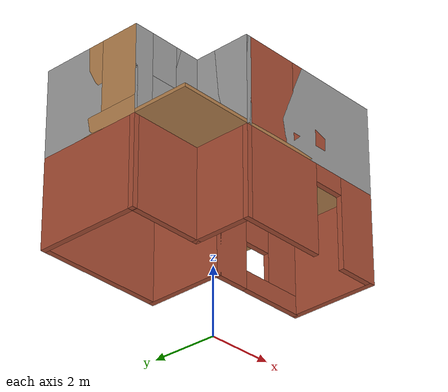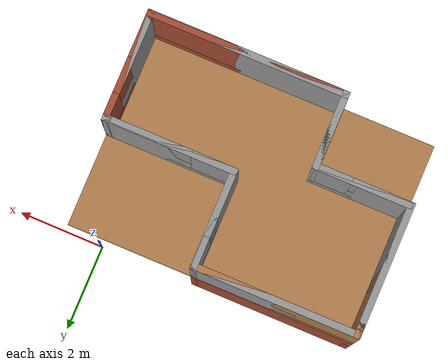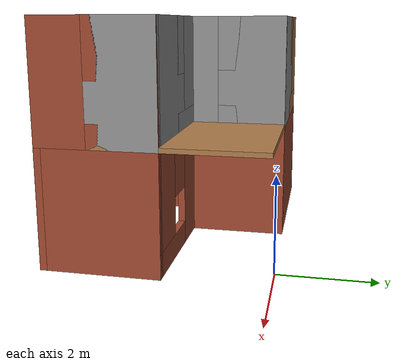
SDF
<?xml version='1.0'?>
<sdf version='1.7'>
  <model name='noHouse'>
    <pose>-2.625 -2.3075 0 0 -0 0</pose>
    <link name='Floor_0'>
      <collision name='Floor_0_Collision'>
        <geometry>
          <box>
            <size>6.6 4.6 0.1</size>
          </box>
        </geometry>
        <pose>0 0 0.05 0 -0 0</pose>
      </collision>
      <visual name='Floor_0_Visual'>
        <pose>0 0 0.05 0 -0 0</pose>
        <geometry>
          <box>
            <size>6.6 4.6 0.1</size>
          </box>
        </geometry>
        <material>
          <script>
            <uri>file://media/materials/scripts/gazebo.material</uri>
            <name>Gazebo/Wood</name>
          </script>
          <ambient>1 1 1 1</ambient>
        </material>
        <meta>
          <layer>1</layer>
        </meta>
      </visual>
      <pose>0 -0.0075 2.5 0 -0 0</pose>
    </link>
    <link name='Wall_0'>
      <pose>1.8 0.1175 0 0 -0 0</pose>
      <visual name='Wall_0_Visual_0'>
        <pose>-0.9725 0 1.25 0 -0 0</pose>
        <geometry>
          <box>
            <size>1.055 0.15 2.5</size>
          </box>
        </geometry>
        <material>
          <script>
            <uri>file://media/materials/scripts/gazebo.material</uri>
            <name>Gazebo/Bricks</name>
          </script>
          <ambient>1 1 1 1</ambient>
        </material>
        <meta>
          <layer>0</layer>
        </meta>
      </visual>
      <collision name='Wall_0_Collision_0'>
        <geometry>
          <box>
            <size>1.055 0.15 2.5</size>
          </box>
        </geometry>
        <pose>-0.9725 0 1.25 0 -0 0</pose>
      </collision>
      <visual name='Wall_0_Visual_1'>
        <pose>0.5275 0 0.25 0 -0 0</pose>
        <geometry>
          <box>
            <size>1.945 0.15 0.5</size>
          </box>
        </geometry>
        <material>
          <script>
            <uri>file://media/materials/scripts/gazebo.material</uri>
            <name>Gazebo/Bricks</name>
          </script>
          <ambient>1 1 1 1</ambient>
        </material>
        <meta>
          <layer>0</layer>
        </meta>
      </visual>
      <collision name='Wall_0_Collision_1'>
        <geometry>
          <box>
            <size>1.945 0.15 0.5</size>
          </box>
        </geometry>
        <pose>0.5275 0 0.25 0 -0 0</pose>
      </collision>
      <visual name='Wall_0_Visual_2'>
        <pose>0.9275 0 1.5 0 -0 0</pose>
        <geometry>
          <box>
            <size>1.145 0.15 2</size>
          </box>
        </geometry>
        <material>
          <script>
            <uri>file://media/materials/scripts/gazebo.material</uri>
            <name>Gazebo/Bricks</name>
          </script>
          <ambient>1 1 1 1</ambient>
        </material>
        <meta>
          <layer>0</layer>
        </meta>
      </visual>
      <collision name='Wall_0_Collision_2'>
        <geometry>
          <box>
            <size>1.145 0.15 2</size>
          </box>
        </geometry>
        <pose>0.9275 0 1.5 0 -0 0</pose>
      </collision>
      <visual name='Wall_0_Visual_3'>
        <pose>-0.045 0 1.9 0 -0 0</pose>
        <geometry>
          <box>
            <size>0.8 0.15 1.2</size>
          </box>
        </geometry>
        <material>
          <script>
            <uri>file://media/materials/scripts/gazebo.material</uri>
            <name>Gazebo/Bricks</name>
          </script>
          <ambient>1 1 1 1</ambient>
        </material>
        <meta>
          <layer>0</layer>
        </meta>
      </visual>
      <collision name='Wall_0_Collision_3'>
        <geometry>
          <box>
            <size>0.8 0.15 1.2</size>
          </box>
        </geometry>
        <pose>-0.045 0 1.9 0 -0 0</pose>
      </collision>
    </link>
    <link name='Wall_1'>
      <collision name='Wall_1_Collision'>
        <geometry>
          <box>
            <size>2.5 0.15 2.5</size>
          </box>
        </geometry>
        <pose>0 0 1.25 0 -0 0</pose>
      </collision>
      <visual name='Wall_1_Visual'>
        <pose>0 0 1.25 0 -0 0</pose>
        <geometry>
          <box>
            <size>2.5 0.15 2.5</size>
          </box>
        </geometry>
        <material>
          <script>
            <uri>file://media/materials/scripts/gazebo.material</uri>
            <name>Gazebo/Bricks</name>
          </script>
          <ambient>1 1 1 1</ambient>
        </material>
        <meta>
          <layer>0</layer>
        </meta>
      </visual>
      <pose>3.225 -1.0575 0 0 -0 -1.5708</pose>
    </link>
    <link name='Wall_10'>
      <collision name='Wall_10_Collision'>
        <geometry>
          <box>
            <size>2.5 0.15 2.5</size>
          </box>
        </geometry>
        <pose>0 0 1.25 0 -0 0</pose>
      </collision>
      <visual name='Wall_10_Visual'>
        <pose>0 0 1.25 0 -0 0</pose>
        <geometry>
          <box>
            <size>2.5 0.15 2.5</size>
          </box>
        </geometry>
        <material>
          <script>
            <uri>file://media/materials/scripts/gazebo.material</uri>
            <name>Gazebo/Grey</name>
          </script>
          <ambient>1 1 1 1</ambient>
        </material>
        <meta>
          <layer>1</layer>
        </meta>
      </visual>
      <pose>3.225 -1.0575 2.5 0 -0 -1.5708</pose>
    </link>
    <link name='Wall_11'>
      <collision name='Wall_11_Collision'>
        <geometry>
          <box>
            <size>4.5 0.15 2.5</size>
          </box>
        </geometry>
        <pose>0 0 1.25 0 -0 0</pose>
      </collision>
      <visual name='Wall_11_Visual'>
        <pose>0 0 1.25 0 -0 0</pose>
        <geometry>
          <box>
            <size>4.5 0.15 2.5</size>
          </box>
        </geometry>
        <material>
          <script>
            <uri>file://media/materials/scripts/gazebo.material</uri>
            <name>Gazebo/Grey</name>
          </script>
          <ambient>1 1 1 1</ambient>
        </material>
        <meta>
          <layer>1</layer>
        </meta>
      </visual>
      <pose>1.05 -2.2325 2.5 0 -0 3.14159</pose>
    </link>
    <link name='Wall_12'>
      <collision name='Wall_12_Collision'>
        <geometry>
          <box>
            <size>1.75 0.15 2.5</size>
          </box>
        </geometry>
        <pose>0 0 1.25 0 -0 0</pose>
      </collision>
      <visual name='Wall_12_Visual'>
        <pose>0 0 1.25 0 -0 0</pose>
        <geometry>
          <box>
            <size>1.75 0.15 2.5</size>
          </box>
        </geometry>
        <material>
          <script>
            <uri>file://media/materials/scripts/gazebo.material</uri>
            <name>Gazebo/Grey</name>
          </script>
          <ambient>1 1 1 1</ambient>
        </material>
        <meta>
          <layer>1</layer>
        </meta>
      </visual>
      <pose>-1.125 -1.4325 2.5 0 -0 1.5708</pose>
    </link>
    <link name='Wall_13'>
      <collision name='Wall_13_Collision'>
        <geometry>
          <box>
            <size>2.25 0.15 2.5</size>
          </box>
        </geometry>
        <pose>0 0 1.25 0 -0 0</pose>
      </collision>
      <visual name='Wall_13_Visual'>
        <pose>0 0 1.25 0 -0 0</pose>
        <geometry>
          <box>
            <size>2.25 0.15 2.5</size>
          </box>
        </geometry>
        <material>
          <script>
            <uri>file://media/materials/scripts/gazebo.material</uri>
            <name>Gazebo/Grey</name>
          </script>
          <ambient>1 1 1 1</ambient>
        </material>
        <meta>
          <layer>1</layer>
        </meta>
      </visual>
      <pose>-2.175 -0.6325 2.5 0 -0 3.14159</pose>
    </link>
    <link name='Wall_14'>
      <collision name='Wall_14_Collision'>
        <geometry>
          <box>
            <size>3 0.15 2.5</size>
          </box>
        </geometry>
        <pose>0 0 1.25 0 -0 0</pose>
      </collision>
      <visual name='Wall_14_Visual'>
        <pose>0 0 1.25 0 -0 0</pose>
        <geometry>
          <box>
            <size>3 0.15 2.5</size>
          </box>
        </geometry>
        <material>
          <script>
            <uri>file://media/materials/scripts/gazebo.material</uri>
            <name>Gazebo/Grey</name>
          </script>
          <ambient>1 1 1 1</ambient>
        </material>
        <meta>
          <layer>1</layer>
        </meta>
      </visual>
      <pose>-3.225 0.7925 2.5 0 -0 1.5708</pose>
    </link>
    <link name='Wall_15'>
      <collision name='Wall_15_Collision'>
        <geometry>
          <box>
            <size>3.75 0.15 2.5</size>
          </box>
        </geometry>
        <pose>0 0 1.25 0 -0 0</pose>
      </collision>
      <visual name='Wall_15_Visual'>
        <pose>0 0 1.25 0 -0 0</pose>
        <geometry>
          <box>
            <size>3.75 0.15 2.5</size>
          </box>
        </geometry>
        <material>
          <script>
            <uri>file://media/materials/scripts/gazebo.material</uri>
            <name>Gazebo/Grey</name>
          </script>
          <ambient>1 1 1 1</ambient>
        </material>
        <meta>
          <layer>1</layer>
        </meta>
      </visual>
      <pose>-1.425 2.2175 2.5 0 -0 0</pose>
    </link>
    <link name='Wall_16'>
      <collision name='Wall_16_Collision'>
        <geometry>
          <box>
            <size>2.25 0.15 2.5</size>
          </box>
        </geometry>
        <pose>0 0 1.25 0 -0 0</pose>
      </collision>
      <visual name='Wall_16_Visual'>
        <pose>0 0 1.25 0 -0 0</pose>
        <geometry>
          <box>
            <size>2.25 0.15 2.5</size>
          </box>
        </geometry>
        <material>
          <script>
            <uri>file://media/materials/scripts/gazebo.material</uri>
            <name>Gazebo/Grey</name>
          </script>
          <ambient>1 1 1 1</ambient>
        </material>
        <meta>
          <layer>1</layer>
        </meta>
      </visual>
      <pose>0.375 1.1675 2.5 0 -0 -1.5708</pose>
    </link>
    <link name='Wall_17'>
      <pose>-2.175 -0.6325 2.5 0 -0 0</pose>
      <visual name='Wall_17_Visual_0'>
        <pose>-0.8375 0 1.25 0 -0 0</pose>
        <geometry>
          <box>
            <size>0.575 0.15 2.5</size>
          </box>
        </geometry>
        <material>
          <script>
            <uri>file://media/materials/scripts/gazebo.material</uri>
            <name>Gazebo/Grey</name>
          </script>
          <ambient>1 1 1 1</ambient>
        </material>
        <meta>
          <layer>1</layer>
        </meta>
      </visual>
      <collision name='Wall_17_Collision_0'>
        <geometry>
          <box>
            <size>0.575 0.15 2.5</size>
          </box>
        </geometry>
        <pose>-0.8375 0 1.25 0 -0 0</pose>
      </collision>
      <visual name='Wall_17_Visual_1'>
        <pose>0.2875 0 0.25 0 -0 0</pose>
        <geometry>
          <box>
            <size>1.675 0.15 0.5</size>
          </box>
        </geometry>
        <material>
          <script>
            <uri>file://media/materials/scripts/gazebo.material</uri>
            <name>Gazebo/Grey</name>
          </script>
          <ambient>1 1 1 1</ambient>
        </material>
        <meta>
          <layer>1</layer>
        </meta>
      </visual>
      <collision name='Wall_17_Collision_1'>
        <geometry>
          <box>
            <size>1.675 0.15 0.5</size>
          </box>
        </geometry>
        <pose>0.2875 0 0.25 0 -0 0</pose>
      </collision>
      <visual name='Wall_17_Visual_2'>
        <pose>0.6875 0 1.5 0 -0 0</pose>
        <geometry>
          <box>
            <size>0.875 0.15 2</size>
          </box>
        </geometry>
        <material>
          <script>
            <uri>file://media/materials/scripts/gazebo.material</uri>
            <name>Gazebo/Grey</name>
          </script>
          <ambient>1 1 1 1</ambient>
        </material>
        <meta>
          <layer>1</layer>
        </meta>
      </visual>
      <collision name='Wall_17_Collision_2'>
        <geometry>
          <box>
            <size>0.875 0.15 2</size>
          </box>
        </geometry>
        <pose>0.6875 0 1.5 0 -0 0</pose>
      </collision>
      <visual name='Wall_17_Visual_3'>
        <pose>-0.15 0 1.9 0 -0 0</pose>
        <geometry>
          <box>
            <size>0.8 0.15 1.2</size>
          </box>
        </geometry>
        <material>
          <script>
            <uri>file://media/materials/scripts/gazebo.material</uri>
            <name>Gazebo/Grey</name>
          </script>
          <ambient>1 1 1 1</ambient>
        </material>
        <meta>
          <layer>1</layer>
        </meta>
      </visual>
      <collision name='Wall_17_Collision_3'>
        <geometry>
          <box>
            <size>0.8 0.15 1.2</size>
          </box>
        </geometry>
        <pose>-0.15 0 1.9 0 -0 0</pose>
      </collision>
    </link>
    <link name='Wall_18'>
      <collision name='Wall_18_Collision'>
        <geometry>
          <box>
            <size>1.75 0.15 2.5</size>
          </box>
        </geometry>
        <pose>0 0 1.25 0 -0 0</pose>
      </collision>
      <visual name='Wall_18_Visual'>
        <pose>0 0 1.25 0 -0 0</pose>
        <geometry>
          <box>
            <size>1.75 0.15 2.5</size>
          </box>
        </geometry>
        <material>
          <script>
            <uri>file://media/materials/scripts/gazebo.material</uri>
            <name>Gazebo/Grey</name>
          </script>
          <ambient>1 1 1 1</ambient>
        </material>
        <meta>
          <layer>1</layer>
        </meta>
      </visual>
      <pose>-1.125 -1.4325 2.5 0 -0 -1.5708</pose>
    </link>
    <link name='Wall_19'>
      <pose>1.05 -2.2325 2.5 0 -0 0</pose>
      <visual name='Wall_19_Visual_0'>
        <pose>-1.4225 0 1.25 0 -0 0</pose>
        <geometry>
          <box>
            <size>1.655 0.15 2.5</size>
          </box>
        </geometry>
        <material>
          <script>
            <uri>file://media/materials/scripts/gazebo.material</uri>
            <name>Gazebo/Bricks</name>
          </script>
          <ambient>1 1 1 1</ambient>
        </material>
        <meta>
          <layer>1</layer>
        </meta>
      </visual>
      <collision name='Wall_19_Collision_0'>
        <geometry>
          <box>
            <size>1.655 0.15 2.5</size>
          </box>
        </geometry>
        <pose>-1.4225 0 1.25 0 -0 0</pose>
      </collision>
      <visual name='Wall_19_Visual_1'>
        <pose>0.8275 0 0.25 0 -0 0</pose>
        <geometry>
          <box>
            <size>2.845 0.15 0.5</size>
          </box>
        </geometry>
        <material>
          <script>
            <uri>file://media/materials/scripts/gazebo.material</uri>
            <name>Gazebo/Bricks</name>
          </script>
          <ambient>1 1 1 1</ambient>
        </material>
        <meta>
          <layer>1</layer>
        </meta>
      </visual>
      <collision name='Wall_19_Collision_1'>
        <geometry>
          <box>
            <size>2.845 0.15 0.5</size>
          </box>
        </geometry>
        <pose>0.8275 0 0.25 0 -0 0</pose>
      </collision>
      <visual name='Wall_19_Visual_2'>
        <pose>1.2275 0 1.5 0 -0 0</pose>
        <geometry>
          <box>
            <size>2.045 0.15 2</size>
          </box>
        </geometry>
        <material>
          <script>
            <uri>file://media/materials/scripts/gazebo.material</uri>
            <name>Gazebo/Bricks</name>
          </script>
          <ambient>1 1 1 1</ambient>
        </material>
        <meta>
          <layer>1</layer>
        </meta>
      </visual>
      <collision name='Wall_19_Collision_2'>
        <geometry>
          <box>
            <size>2.045 0.15 2</size>
          </box>
        </geometry>
        <pose>1.2275 0 1.5 0 -0 0</pose>
      </collision>
      <visual name='Wall_19_Visual_3'>
        <pose>-0.195 0 1.9 0 -0 0</pose>
        <geometry>
          <box>
            <size>0.8 0.15 1.2</size>
          </box>
        </geometry>
        <material>
          <script>
            <uri>file://media/materials/scripts/gazebo.material</uri>
            <name>Gazebo/Bricks</name>
          </script>
          <ambient>1 1 1 1</ambient>
        </material>
        <meta>
          <layer>1</layer>
        </meta>
      </visual>
      <collision name='Wall_19_Collision_3'>
        <geometry>
          <box>
            <size>0.8 0.15 1.2</size>
          </box>
        </geometry>
        <pose>-0.195 0 1.9 0 -0 0</pose>
      </collision>
    </link>
    <link name='Wall_2'>
      <pose>1.05 -2.2325 0 0 -0 3.14159</pose>
      <visual name='Wall_2_Visual_0'>
        <pose>-1.6775 0 1.25 0 -0 0</pose>
        <geometry>
          <box>
            <size>1.145 0.15 2.5</size>
          </box>
        </geometry>
        <material>
          <script>
            <uri>file://media/materials/scripts/gazebo.material</uri>
            <name>Gazebo/Bricks</name>
          </script>
          <ambient>1 1 1 1</ambient>
        </material>
        <meta>
          <layer>0</layer>
        </meta>
      </visual>
      <collision name='Wall_2_Collision_0'>
        <geometry>
          <box>
            <size>1.145 0.15 2.5</size>
          </box>
        </geometry>
        <pose>-1.6775 0 1.25 0 -0 0</pose>
      </collision>
      <visual name='Wall_2_Visual_1'>
        <pose>1.0225 0 1.25 0 -0 0</pose>
        <geometry>
          <box>
            <size>2.455 0.15 2.5</size>
          </box>
        </geometry>
        <material>
          <script>
            <uri>file://media/materials/scripts/gazebo.material</uri>
            <name>Gazebo/Bricks</name>
          </script>
          <ambient>1 1 1 1</ambient>
        </material>
        <meta>
          <layer>0</layer>
        </meta>
      </visual>
      <collision name='Wall_2_Collision_1'>
        <geometry>
          <box>
            <size>2.455 0.15 2.5</size>
          </box>
        </geometry>
        <pose>1.0225 0 1.25 0 -0 0</pose>
      </collision>
      <visual name='Wall_2_Visual_2'>
        <pose>-0.655 0 2.25 0 -0 0</pose>
        <geometry>
          <box>
            <size>0.9 0.15 0.5</size>
          </box>
        </geometry>
        <material>
          <script>
            <uri>file://media/materials/scripts/gazebo.material</uri>
            <name>Gazebo/Bricks</name>
          </script>
          <ambient>1 1 1 1</ambient>
        </material>
        <meta>
          <layer>0</layer>
        </meta>
      </visual>
      <collision name='Wall_2_Collision_2'>
        <geometry>
          <box>
            <size>0.9 0.15 0.5</size>
          </box>
        </geometry>
        <pose>-0.655 0 2.25 0 -0 0</pose>
      </collision>
    </link>
    <link name='Wall_20'>
      <pose>3.225 -1.0575 2.5 0 -0 1.5708</pose>
      <visual name='Wall_20_Visual_0'>
        <pose>-0.7125 0 1.25 0 -0 0</pose>
        <geometry>
          <box>
            <size>1.075 0.15 2.5</size>
          </box>
        </geometry>
        <material>
          <script>
            <uri>file://media/materials/scripts/gazebo.material</uri>
            <name>Gazebo/Bricks</name>
          </script>
          <ambient>1 1 1 1</ambient>
        </material>
        <meta>
          <layer>1</layer>
        </meta>
      </visual>
      <collision name='Wall_20_Collision_0'>
        <geometry>
          <box>
            <size>1.075 0.15 2.5</size>
          </box>
        </geometry>
        <pose>-0.7125 0 1.25 0 -0 0</pose>
      </collision>
      <visual name='Wall_20_Visual_1'>
        <pose>0.5375 0 0.25 0 -0 0</pose>
        <geometry>
          <box>
            <size>1.425 0.15 0.5</size>
          </box>
        </geometry>
        <material>
          <script>
            <uri>file://media/materials/scripts/gazebo.material</uri>
            <name>Gazebo/Bricks</name>
          </script>
          <ambient>1 1 1 1</ambient>
        </material>
        <meta>
          <layer>1</layer>
        </meta>
      </visual>
      <collision name='Wall_20_Collision_1'>
        <geometry>
          <box>
            <size>1.425 0.15 0.5</size>
          </box>
        </geometry>
        <pose>0.5375 0 0.25 0 -0 0</pose>
      </collision>
      <visual name='Wall_20_Visual_2'>
        <pose>0.9375 0 1.5 0 -0 0</pose>
        <geometry>
          <box>
            <size>0.625 0.15 2</size>
          </box>
        </geometry>
        <material>
          <script>
            <uri>file://media/materials/scripts/gazebo.material</uri>
            <name>Gazebo/Bricks</name>
          </script>
          <ambient>1 1 1 1</ambient>
        </material>
        <meta>
          <layer>1</layer>
        </meta>
      </visual>
      <collision name='Wall_20_Collision_2'>
        <geometry>
          <box>
            <size>0.625 0.15 2</size>
          </box>
        </geometry>
        <pose>0.9375 0 1.5 0 -0 0</pose>
      </collision>
      <visual name='Wall_20_Visual_3'>
        <pose>0.225 0 1.9 0 -0 0</pose>
        <geometry>
          <box>
            <size>0.8 0.15 1.2</size>
          </box>
        </geometry>
        <material>
          <script>
            <uri>file://media/materials/scripts/gazebo.material</uri>
            <name>Gazebo/Bricks</name>
          </script>
          <ambient>1 1 1 1</ambient>
        </material>
        <meta>
          <layer>1</layer>
        </meta>
      </visual>
      <collision name='Wall_20_Collision_3'>
        <geometry>
          <box>
            <size>0.8 0.15 1.2</size>
          </box>
        </geometry>
        <pose>0.225 0 1.9 0 -0 0</pose>
      </collision>
    </link>
    <link name='Wall_21'>
      <pose>1.8 0.1175 2.5 0 -0 3.14159</pose>
      <visual name='Wall_21_Visual_0'>
        <pose>-0.9025 0 1.25 0 -0 0</pose>
        <geometry>
          <box>
            <size>1.195 0.15 2.5</size>
          </box>
        </geometry>
        <material>
          <script>
            <uri>file://media/materials/scripts/gazebo.material</uri>
            <name>Gazebo/Grey</name>
          </script>
          <ambient>1 1 1 1</ambient>
        </material>
        <meta>
          <layer>1</layer>
        </meta>
      </visual>
      <collision name='Wall_21_Collision_0'>
        <geometry>
          <box>
            <size>1.195 0.15 2.5</size>
          </box>
        </geometry>
        <pose>-0.9025 0 1.25 0 -0 0</pose>
      </collision>
      <visual name='Wall_21_Visual_1'>
        <pose>0.5975 0 0.25 0 -0 0</pose>
        <geometry>
          <box>
            <size>1.805 0.15 0.5</size>
          </box>
        </geometry>
        <material>
          <script>
            <uri>file://media/materials/scripts/gazebo.material</uri>
            <name>Gazebo/Grey</name>
          </script>
          <ambient>1 1 1 1</ambient>
        </material>
        <meta>
          <layer>1</layer>
        </meta>
      </visual>
      <collision name='Wall_21_Collision_1'>
        <geometry>
          <box>
            <size>1.805 0.15 0.5</size>
          </box>
        </geometry>
        <pose>0.5975 0 0.25 0 -0 0</pose>
      </collision>
      <visual name='Wall_21_Visual_2'>
        <pose>0.9975 0 1.5 0 -0 0</pose>
        <geometry>
          <box>
            <size>1.005 0.15 2</size>
          </box>
        </geometry>
        <material>
          <script>
            <uri>file://media/materials/scripts/gazebo.material</uri>
            <name>Gazebo/Grey</name>
          </script>
          <ambient>1 1 1 1</ambient>
        </material>
        <meta>
          <layer>1</layer>
        </meta>
      </visual>
      <collision name='Wall_21_Collision_2'>
        <geometry>
          <box>
            <size>1.005 0.15 2</size>
          </box>
        </geometry>
        <pose>0.9975 0 1.5 0 -0 0</pose>
      </collision>
      <visual name='Wall_21_Visual_3'>
        <pose>0.095 0 1.9 0 -0 0</pose>
        <geometry>
          <box>
            <size>0.8 0.15 1.2</size>
          </box>
        </geometry>
        <material>
          <script>
            <uri>file://media/materials/scripts/gazebo.material</uri>
            <name>Gazebo/Grey</name>
          </script>
          <ambient>1 1 1 1</ambient>
        </material>
        <meta>
          <layer>1</layer>
        </meta>
      </visual>
      <collision name='Wall_21_Collision_3'>
        <geometry>
          <box>
            <size>0.8 0.15 1.2</size>
          </box>
        </geometry>
        <pose>0.095 0 1.9 0 -0 0</pose>
      </collision>
    </link>
    <link name='Wall_22'>
      <pose>0.375 1.1675 2.5 0 -0 1.5708</pose>
      <visual name='Wall_22_Visual_0'>
        <pose>-0.7625 0 1.25 0 -0 0</pose>
        <geometry>
          <box>
            <size>0.725 0.15 2.5</size>
          </box>
        </geometry>
        <material>
          <script>
            <uri>file://media/materials/scripts/gazebo.material</uri>
            <name>Gazebo/Grey</name>
          </script>
          <ambient>1 1 1 1</ambient>
        </material>
        <meta>
          <layer>1</layer>
        </meta>
      </visual>
      <collision name='Wall_22_Collision_0'>
        <geometry>
          <box>
            <size>0.725 0.15 2.5</size>
          </box>
        </geometry>
        <pose>-0.7625 0 1.25 0 -0 0</pose>
      </collision>
      <visual name='Wall_22_Visual_1'>
        <pose>0.3625 0 0.25 0 -0 0</pose>
        <geometry>
          <box>
            <size>1.525 0.15 0.5</size>
          </box>
        </geometry>
        <material>
          <script>
            <uri>file://media/materials/scripts/gazebo.material</uri>
            <name>Gazebo/Grey</name>
          </script>
          <ambient>1 1 1 1</ambient>
        </material>
        <meta>
          <layer>1</layer>
        </meta>
      </visual>
      <collision name='Wall_22_Collision_1'>
        <geometry>
          <box>
            <size>1.525 0.15 0.5</size>
          </box>
        </geometry>
        <pose>0.3625 0 0.25 0 -0 0</pose>
      </collision>
      <visual name='Wall_22_Visual_2'>
        <pose>0.7625 0 1.5 0 -0 0</pose>
        <geometry>
          <box>
            <size>0.725 0.15 2</size>
          </box>
        </geometry>
        <material>
          <script>
            <uri>file://media/materials/scripts/gazebo.material</uri>
            <name>Gazebo/Grey</name>
          </script>
          <ambient>1 1 1 1</ambient>
        </material>
        <meta>
          <layer>1</layer>
        </meta>
      </visual>
      <collision name='Wall_22_Collision_2'>
        <geometry>
          <box>
            <size>0.725 0.15 2</size>
          </box>
        </geometry>
        <pose>0.7625 0 1.5 0 -0 0</pose>
      </collision>
      <visual name='Wall_22_Visual_3'>
        <pose>-0 0 1.9 0 -0 0</pose>
        <geometry>
          <box>
            <size>0.8 0.15 1.2</size>
          </box>
        </geometry>
        <material>
          <script>
            <uri>file://media/materials/scripts/gazebo.material</uri>
            <name>Gazebo/Grey</name>
          </script>
          <ambient>1 1 1 1</ambient>
        </material>
        <meta>
          <layer>1</layer>
        </meta>
      </visual>
      <collision name='Wall_22_Collision_3'>
        <geometry>
          <box>
            <size>0.8 0.15 1.2</size>
          </box>
        </geometry>
        <pose>-0 0 1.9 0 -0 0</pose>
      </collision>
    </link>
    <link name='Wall_23'>
      <pose>-1.425 2.2175 2.5 0 -0 3.14159</pose>
      <visual name='Wall_23_Visual_0'>
        <pose>-1.0925 0 1.25 0 -0 0</pose>
        <geometry>
          <box>
            <size>1.565 0.15 2.5</size>
          </box>
        </geometry>
        <material>
          <script>
            <uri>file://media/materials/scripts/gazebo.material</uri>
            <name>Gazebo/Wood</name>
          </script>
          <ambient>1 1 1 1</ambient>
        </material>
        <meta>
          <layer>1</layer>
        </meta>
      </visual>
      <collision name='Wall_23_Collision_0'>
        <geometry>
          <box>
            <size>1.565 0.15 2.5</size>
          </box>
        </geometry>
        <pose>-1.0925 0 1.25 0 -0 0</pose>
      </collision>
      <visual name='Wall_23_Visual_1'>
        <pose>0.7825 0 0.25 0 -0 0</pose>
        <geometry>
          <box>
            <size>2.185 0.15 0.5</size>
          </box>
        </geometry>
        <material>
          <script>
            <uri>file://media/materials/scripts/gazebo.material</uri>
            <name>Gazebo/Wood</name>
          </script>
          <ambient>1 1 1 1</ambient>
        </material>
        <meta>
          <layer>1</layer>
        </meta>
      </visual>
      <collision name='Wall_23_Collision_1'>
        <geometry>
          <box>
            <size>2.185 0.15 0.5</size>
          </box>
        </geometry>
        <pose>0.7825 0 0.25 0 -0 0</pose>
      </collision>
      <visual name='Wall_23_Visual_2'>
        <pose>1.1825 0 1.5 0 -0 0</pose>
        <geometry>
          <box>
            <size>1.385 0.15 2</size>
          </box>
        </geometry>
        <material>
          <script>
            <uri>file://media/materials/scripts/gazebo.material</uri>
            <name>Gazebo/Wood</name>
          </script>
          <ambient>1 1 1 1</ambient>
        </material>
        <meta>
          <layer>1</layer>
        </meta>
      </visual>
      <collision name='Wall_23_Collision_2'>
        <geometry>
          <box>
            <size>1.385 0.15 2</size>
          </box>
        </geometry>
        <pose>1.1825 0 1.5 0 -0 0</pose>
      </collision>
      <visual name='Wall_23_Visual_3'>
        <pose>0.09 0 1.9 0 -0 0</pose>
        <geometry>
          <box>
            <size>0.8 0.15 1.2</size>
          </box>
        </geometry>
        <material>
          <script>
            <uri>file://media/materials/scripts/gazebo.material</uri>
            <name>Gazebo/Wood</name>
          </script>
          <ambient>1 1 1 1</ambient>
        </material>
        <meta>
          <layer>1</layer>
        </meta>
      </visual>
      <collision name='Wall_23_Collision_3'>
        <geometry>
          <box>
            <size>0.8 0.15 1.2</size>
          </box>
        </geometry>
        <pose>0.09 0 1.9 0 -0 0</pose>
      </collision>
    </link>
    <link name='Wall_24'>
      <pose>-3.225 0.7925 2.5 0 -0 -1.5708</pose>
      <visual name='Wall_24_Visual_0'>
        <pose>-0.9525 0 1.25 0 -0 0</pose>
        <geometry>
          <box>
            <size>1.095 0.15 2.5</size>
          </box>
        </geometry>
        <material>
          <script>
            <uri>file://media/materials/scripts/gazebo.material</uri>
            <name>Gazebo/Wood</name>
          </script>
          <ambient>1 1 1 1</ambient>
        </material>
        <meta>
          <layer>1</layer>
        </meta>
      </visual>
      <collision name='Wall_24_Collision_0'>
        <geometry>
          <box>
            <size>1.095 0.15 2.5</size>
          </box>
        </geometry>
        <pose>-0.9525 0 1.25 0 -0 0</pose>
      </collision>
      <visual name='Wall_24_Visual_1'>
        <pose>0.5475 0 0.25 0 -0 0</pose>
        <geometry>
          <box>
            <size>1.905 0.15 0.5</size>
          </box>
        </geometry>
        <material>
          <script>
            <uri>file://media/materials/scripts/gazebo.material</uri>
            <name>Gazebo/Wood</name>
          </script>
          <ambient>1 1 1 1</ambient>
        </material>
        <meta>
          <layer>1</layer>
        </meta>
      </visual>
      <collision name='Wall_24_Collision_1'>
        <geometry>
          <box>
            <size>1.905 0.15 0.5</size>
          </box>
        </geometry>
        <pose>0.5475 0 0.25 0 -0 0</pose>
      </collision>
      <visual name='Wall_24_Visual_2'>
        <pose>0.9475 0 1.5 0 -0 0</pose>
        <geometry>
          <box>
            <size>1.105 0.15 2</size>
          </box>
        </geometry>
        <material>
          <script>
            <uri>file://media/materials/scripts/gazebo.material</uri>
            <name>Gazebo/Wood</name>
          </script>
          <ambient>1 1 1 1</ambient>
        </material>
        <meta>
          <layer>1</layer>
        </meta>
      </visual>
      <collision name='Wall_24_Collision_2'>
        <geometry>
          <box>
            <size>1.105 0.15 2</size>
          </box>
        </geometry>
        <pose>0.9475 0 1.5 0 -0 0</pose>
      </collision>
      <visual name='Wall_24_Visual_3'>
        <pose>-0.005 0 1.9 0 -0 0</pose>
        <geometry>
          <box>
            <size>0.8 0.15 1.2</size>
          </box>
        </geometry>
        <material>
          <script>
            <uri>file://media/materials/scripts/gazebo.material</uri>
            <name>Gazebo/Wood</name>
          </script>
          <ambient>1 1 1 1</ambient>
        </material>
        <meta>
          <layer>1</layer>
        </meta>
      </visual>
      <collision name='Wall_24_Collision_3'>
        <geometry>
          <box>
            <size>0.8 0.15 1.2</size>
          </box>
        </geometry>
        <pose>-0.005 0 1.9 0 -0 0</pose>
      </collision>
    </link>
    <link name='Wall_3'>
      <collision name='Wall_3_Collision'>
        <geometry>
          <box>
            <size>1.75 0.15 2.5</size>
          </box>
        </geometry>
        <pose>0 0 1.25 0 -0 0</pose>
      </collision>
      <visual name='Wall_3_Visual'>
        <pose>0 0 1.25 0 -0 0</pose>
        <geometry>
          <box>
            <size>1.75 0.15 2.5</size>
          </box>
        </geometry>
        <material>
          <script>
            <uri>file://media/materials/scripts/gazebo.material</uri>
            <name>Gazebo/Bricks</name>
          </script>
          <ambient>1 1 1 1</ambient>
        </material>
        <meta>
          <layer>0</layer>
        </meta>
      </visual>
      <pose>-1.125 -1.4325 0 0 -0 1.5708</pose>
    </link>
    <link name='Wall_4'>
      <collision name='Wall_4_Collision'>
        <geometry>
          <box>
            <size>2.25 0.15 2.5</size>
          </box>
        </geometry>
        <pose>0 0 1.25 0 -0 0</pose>
      </collision>
      <visual name='Wall_4_Visual'>
        <pose>0 0 1.25 0 -0 0</pose>
        <geometry>
          <box>
            <size>2.25 0.15 2.5</size>
          </box>
        </geometry>
        <material>
          <script>
            <uri>file://media/materials/scripts/gazebo.material</uri>
            <name>Gazebo/Bricks</name>
          </script>
          <ambient>1 1 1 1</ambient>
        </material>
        <meta>
          <layer>0</layer>
        </meta>
      </visual>
      <pose>-2.175 -0.6325 0 0 -0 3.14159</pose>
    </link>
    <link name='Wall_5'>
      <collision name='Wall_5_Collision'>
        <geometry>
          <box>
            <size>3 0.15 2.5</size>
          </box>
        </geometry>
        <pose>0 0 1.25 0 -0 0</pose>
      </collision>
      <visual name='Wall_5_Visual'>
        <pose>0 0 1.25 0 -0 0</pose>
        <geometry>
          <box>
            <size>3 0.15 2.5</size>
          </box>
        </geometry>
        <material>
          <script>
            <uri>file://media/materials/scripts/gazebo.material</uri>
            <name>Gazebo/Bricks</name>
          </script>
          <ambient>1 1 1 1</ambient>
        </material>
        <meta>
          <layer>0</layer>
        </meta>
      </visual>
      <pose>-3.225 0.7925 0 0 -0 1.5708</pose>
    </link>
    <link name='Wall_6'>
      <collision name='Wall_6_Collision'>
        <geometry>
          <box>
            <size>3.75 0.15 2.5</size>
          </box>
        </geometry>
        <pose>0 0 1.25 0 -0 0</pose>
      </collision>
      <visual name='Wall_6_Visual'>
        <pose>0 0 1.25 0 -0 0</pose>
        <geometry>
          <box>
            <size>3.75 0.15 2.5</size>
          </box>
        </geometry>
        <material>
          <script>
            <uri>file://media/materials/scripts/gazebo.material</uri>
            <name>Gazebo/Bricks</name>
          </script>
          <ambient>1 1 1 1</ambient>
        </material>
        <meta>
          <layer>0</layer>
        </meta>
      </visual>
      <pose>-1.425 2.2175 0 0 -0 0</pose>
    </link>
    <link name='Wall_7'>
      <collision name='Wall_7_Collision'>
        <geometry>
          <box>
            <size>2.25 0.15 2.5</size>
          </box>
        </geometry>
        <pose>0 0 1.25 0 -0 0</pose>
      </collision>
      <visual name='Wall_7_Visual'>
        <pose>0 0 1.25 0 -0 0</pose>
        <geometry>
          <box>
            <size>2.25 0.15 2.5</size>
          </box>
        </geometry>
        <material>
          <script>
            <uri>file://media/materials/scripts/gazebo.material</uri>
            <name>Gazebo/Bricks</name>
          </script>
          <ambient>1 1 1 1</ambient>
        </material>
        <meta>
          <layer>0</layer>
        </meta>
      </visual>
      <pose>0.375 1.1675 0 0 -0 -1.5708</pose>
    </link>
    <link name='Wall_9'>
      <collision name='Wall_9_Collision'>
        <geometry>
          <box>
            <size>3 0.15 2.5</size>
          </box>
        </geometry>
        <pose>0 0 1.25 0 -0 0</pose>
      </collision>
      <visual name='Wall_9_Visual'>
        <pose>0 0 1.25 0 -0 0</pose>
        <geometry>
          <box>
            <size>3 0.15 2.5</size>
          </box>
        </geometry>
        <material>
          <script>
            <uri>file://media/materials/scripts/gazebo.material</uri>
            <name>Gazebo/Grey</name>
          </script>
          <ambient>1 1 1 1</ambient>
        </material>
        <meta>
          <layer>1</layer>
        </meta>
      </visual>
      <pose>1.8 0.1175 2.5 0 -0 0</pose>
    </link>
    <static>1</static>
  </model>
</sdf>
